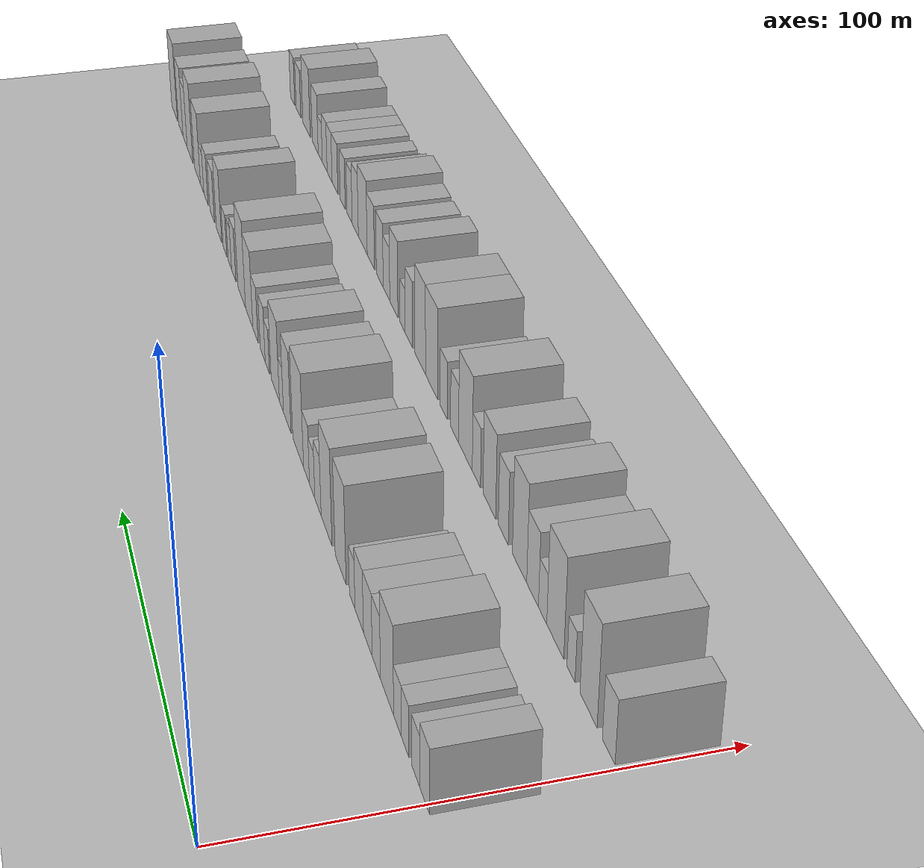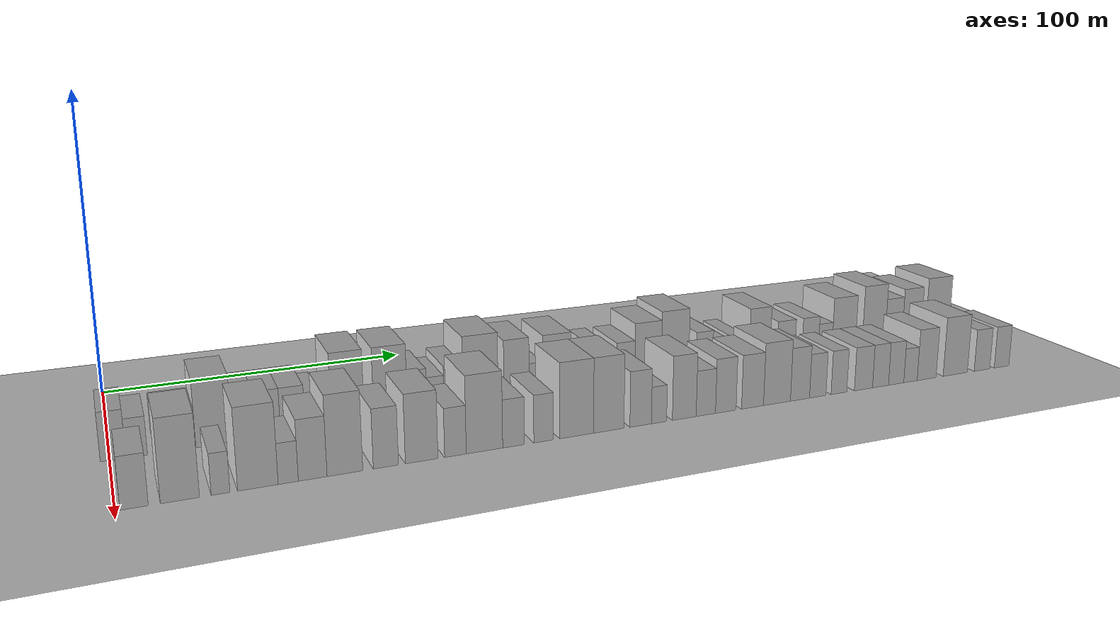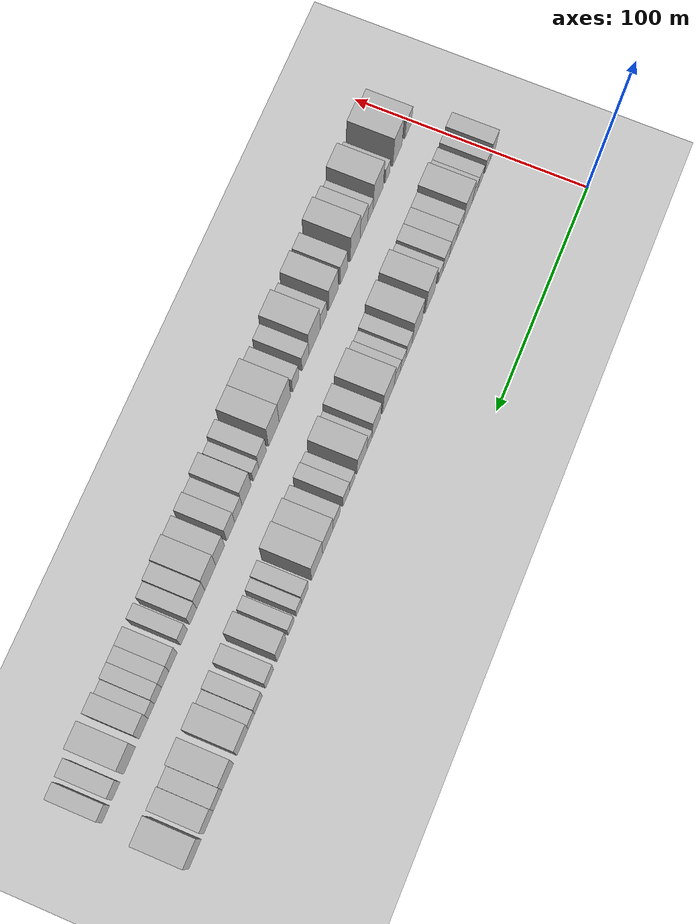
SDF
<sdf version="1.6">
 <world name="default">
  <include>
   <name>ground_plane_2</name>
   <uri>model://HANNAS_ground_plane</uri>
   <pose>100 0 0  0 0 0</pose>
  </include>
  <model name="building_36">
   <static>1</static>
   <pose>50.0000 0.9713 0 0.000000 0.000000 0.000000</pose>
   <link name="link">
    <pose>0 0 7.50 0 0 0</pose>
    <collision name="collision"><geometry><box><size>20.0000 6.8584 15.0000</size></box></geometry></collision>
    <visual name="visual">
     <cast_shadows>0</cast_shadows>
     <geometry><box><size>20.0000 6.8584 15.0000</size></box></geometry>
     <material>
      <script>
       <uri>model://HANNAS_wall/materials/scripts</uri>
       <uri>model://HANNAS_wall/materials/textures</uri>
       <name>vrc/HANNAS_wall</name>
      </script>
     </material>
    </visual>
   </link>
  </model>
  <model name="building_37">
   <static>1</static>
   <pose>50.0000 7.3780 0 0.000000 0.000000 0.000000</pose>
   <link name="link">
    <pose>0 0 6.00 0 0 0</pose>
    <collision name="collision"><geometry><box><size>20.0000 5.9550 12.0000</size></box></geometry></collision>
    <visual name="visual">
     <cast_shadows>0</cast_shadows>
     <geometry><box><size>20.0000 5.9550 12.0000</size></box></geometry>
     <material>
      <script>
       <uri>model://HANNAS_wall/materials/scripts</uri>
       <uri>model://HANNAS_wall/materials/textures</uri>
       <name>vrc/HANNAS_wall</name>
      </script>
     </material>
    </visual>
   </link>
  </model>
  <model name="building_38">
   <static>1</static>
   <pose>50.0000 15.1989 0 0.000000 0.000000 0.000000</pose>
   <link name="link">
    <pose>0 0 6.00 0 0 0</pose>
    <collision name="collision"><geometry><box><size>20.0000 5.6868 12.0000</size></box></geometry></collision>
    <visual name="visual">
     <cast_shadows>0</cast_shadows>
     <geometry><box><size>20.0000 5.6868 12.0000</size></box></geometry>
     <material>
      <script>
       <uri>model://HANNAS_wall/materials/scripts</uri>
       <uri>model://HANNAS_wall/materials/textures</uri>
       <name>vrc/HANNAS_wall</name>
      </script>
     </material>
    </visual>
   </link>
  </model>
  <model name="building_39">
   <static>1</static>
   <pose>50.0000 20.9479 0 0.000000 0.000000 0.000000</pose>
   <link name="link">
    <pose>0 0 6.00 0 0 0</pose>
    <collision name="collision"><geometry><box><size>20.0000 5.8113 12.0000</size></box></geometry></collision>
    <visual name="visual">
     <cast_shadows>0</cast_shadows>
     <geometry><box><size>20.0000 5.8113 12.0000</size></box></geometry>
     <material>
      <script>
       <uri>model://HANNAS_wall/materials/scripts</uri>
       <uri>model://HANNAS_wall/materials/textures</uri>
       <name>vrc/HANNAS_wall</name>
      </script>
     </material>
    </visual>
   </link>
  </model>
  <model name="building_40">
   <static>1</static>
   <pose>50.0000 29.0621 0 0.000000 0.000000 0.000000</pose>
   <link name="link">
    <pose>0 0 10.50 0 0 0</pose>
    <collision name="collision"><geometry><box><size>20.0000 10.4169 21.0000</size></box></geometry></collision>
    <visual name="visual">
     <cast_shadows>0</cast_shadows>
     <geometry><box><size>20.0000 10.4169 21.0000</size></box></geometry>
     <material>
      <script>
       <uri>model://HANNAS_wall/materials/scripts</uri>
       <uri>model://HANNAS_wall/materials/textures</uri>
       <name>vrc/HANNAS_wall</name>
      </script>
     </material>
    </visual>
   </link>
  </model>
  <model name="building_41">
   <static>1</static>
   <pose>50.0000 37.6829 0 0.000000 0.000000 0.000000</pose>
   <link name="link">
    <pose>0 0 7.50 0 0 0</pose>
    <collision name="collision"><geometry><box><size>20.0000 6.8248 15.0000</size></box></geometry></collision>
    <visual name="visual">
     <cast_shadows>0</cast_shadows>
     <geometry><box><size>20.0000 6.8248 15.0000</size></box></geometry>
     <material>
      <script>
       <uri>model://HANNAS_wall/materials/scripts</uri>
       <uri>model://HANNAS_wall/materials/textures</uri>
       <name>vrc/HANNAS_wall</name>
      </script>
     </material>
    </visual>
   </link>
  </model>
  <model name="building_42">
   <static>1</static>
   <pose>50.0000 44.8010 0 0.000000 0.000000 0.000000</pose>
   <link name="link">
    <pose>0 0 7.50 0 0 0</pose>
    <collision name="collision"><geometry><box><size>20.0000 7.4113 15.0000</size></box></geometry></collision>
    <visual name="visual">
     <cast_shadows>0</cast_shadows>
     <geometry><box><size>20.0000 7.4113 15.0000</size></box></geometry>
     <material>
      <script>
       <uri>model://HANNAS_wall/materials/scripts</uri>
       <uri>model://HANNAS_wall/materials/textures</uri>
       <name>vrc/HANNAS_wall</name>
      </script>
     </material>
    </visual>
   </link>
  </model>
  <model name="building_43">
   <static>1</static>
   <pose>50.0000 52.2035 0 0.000000 0.000000 0.000000</pose>
   <link name="link">
    <pose>0 0 7.50 0 0 0</pose>
    <collision name="collision"><geometry><box><size>20.0000 7.3937 15.0000</size></box></geometry></collision>
    <visual name="visual">
     <cast_shadows>0</cast_shadows>
     <geometry><box><size>20.0000 7.3937 15.0000</size></box></geometry>
     <material>
      <script>
       <uri>model://HANNAS_wall/materials/scripts</uri>
       <uri>model://HANNAS_wall/materials/textures</uri>
       <name>vrc/HANNAS_wall</name>
      </script>
     </material>
    </visual>
   </link>
  </model>
  <model name="building_44">
   <static>1</static>
   <pose>50.0000 58.3986 0 0.000000 0.000000 0.000000</pose>
   <link name="link">
    <pose>0 0 6.00 0 0 0</pose>
    <collision name="collision"><geometry><box><size>20.0000 4.9967 12.0000</size></box></geometry></collision>
    <visual name="visual">
     <cast_shadows>0</cast_shadows>
     <geometry><box><size>20.0000 4.9967 12.0000</size></box></geometry>
     <material>
      <script>
       <uri>model://HANNAS_wall/materials/scripts</uri>
       <uri>model://HANNAS_wall/materials/textures</uri>
       <name>vrc/HANNAS_wall</name>
      </script>
     </material>
    </visual>
   </link>
  </model>
  <model name="building_45">
   <static>1</static>
   <pose>50.0000 69.0226 0 0.000000 0.000000 0.000000</pose>
   <link name="link">
    <pose>0 0 12.00 0 0 0</pose>
    <collision name="collision"><geometry><box><size>20.0000 10.2512 24.0000</size></box></geometry></collision>
    <visual name="visual">
     <cast_shadows>0</cast_shadows>
     <geometry><box><size>20.0000 10.2512 24.0000</size></box></geometry>
     <material>
      <script>
       <uri>model://HANNAS_wall/materials/scripts</uri>
       <uri>model://HANNAS_wall/materials/textures</uri>
       <name>vrc/HANNAS_wall</name>
      </script>
     </material>
    </visual>
   </link>
  </model>
  <model name="building_46">
   <static>1</static>
   <pose>50.0000 82.5112 0 0.000000 0.000000 0.000000</pose>
   <link name="link">
    <pose>0 0 12.00 0 0 0</pose>
    <collision name="collision"><geometry><box><size>20.0000 10.7260 24.0000</size></box></geometry></collision>
    <visual name="visual">
     <cast_shadows>0</cast_shadows>
     <geometry><box><size>20.0000 10.7260 24.0000</size></box></geometry>
     <material>
      <script>
       <uri>model://HANNAS_wall/materials/scripts</uri>
       <uri>model://HANNAS_wall/materials/textures</uri>
       <name>vrc/HANNAS_wall</name>
      </script>
     </material>
    </visual>
   </link>
  </model>
  <model name="building_47">
   <static>1</static>
   <pose>50.0000 91.0596 0 0.000000 0.000000 0.000000</pose>
   <link name="link">
    <pose>0 0 7.50 0 0 0</pose>
    <collision name="collision"><geometry><box><size>20.0000 6.3709 15.0000</size></box></geometry></collision>
    <visual name="visual">
     <cast_shadows>0</cast_shadows>
     <geometry><box><size>20.0000 6.3709 15.0000</size></box></geometry>
     <material>
      <script>
       <uri>model://HANNAS_wall/materials/scripts</uri>
       <uri>model://HANNAS_wall/materials/textures</uri>
       <name>vrc/HANNAS_wall</name>
      </script>
     </material>
    </visual>
   </link>
  </model>
  <model name="building_48">
   <static>1</static>
   <pose>50.0000 97.0507 0 0.000000 0.000000 0.000000</pose>
   <link name="link">
    <pose>0 0 6.00 0 0 0</pose>
    <collision name="collision"><geometry><box><size>20.0000 5.6112 12.0000</size></box></geometry></collision>
    <visual name="visual">
     <cast_shadows>0</cast_shadows>
     <geometry><box><size>20.0000 5.6112 12.0000</size></box></geometry>
     <material>
      <script>
       <uri>model://HANNAS_wall/materials/scripts</uri>
       <uri>model://HANNAS_wall/materials/textures</uri>
       <name>vrc/HANNAS_wall</name>
      </script>
     </material>
    </visual>
   </link>
  </model>
  <model name="building_49">
   <static>1</static>
   <pose>50.0000 103.0022 0 0.000000 0.000000 0.000000</pose>
   <link name="link">
    <pose>0 0 7.50 0 0 0</pose>
    <collision name="collision"><geometry><box><size>20.0000 6.2918 15.0000</size></box></geometry></collision>
    <visual name="visual">
     <cast_shadows>0</cast_shadows>
     <geometry><box><size>20.0000 6.2918 15.0000</size></box></geometry>
     <material>
      <script>
       <uri>model://HANNAS_wall/materials/scripts</uri>
       <uri>model://HANNAS_wall/materials/textures</uri>
       <name>vrc/HANNAS_wall</name>
      </script>
     </material>
    </visual>
   </link>
  </model>
  <model name="building_50">
   <static>1</static>
   <pose>50.0000 112.0945 0 0.000000 0.000000 0.000000</pose>
   <link name="link">
    <pose>0 0 12.00 0 0 0</pose>
    <collision name="collision"><geometry><box><size>20.0000 11.8927 24.0000</size></box></geometry></collision>
    <visual name="visual">
     <cast_shadows>0</cast_shadows>
     <geometry><box><size>20.0000 11.8927 24.0000</size></box></geometry>
     <material>
      <script>
       <uri>model://HANNAS_wall/materials/scripts</uri>
       <uri>model://HANNAS_wall/materials/textures</uri>
       <name>vrc/HANNAS_wall</name>
      </script>
     </material>
    </visual>
   </link>
  </model>
  <model name="building_51">
   <static>1</static>
   <pose>50.0000 124.4089 0 0.000000 0.000000 0.000000</pose>
   <link name="link">
    <pose>0 0 10.50 0 0 0</pose>
    <collision name="collision"><geometry><box><size>20.0000 8.7361 21.0000</size></box></geometry></collision>
    <visual name="visual">
     <cast_shadows>0</cast_shadows>
     <geometry><box><size>20.0000 8.7361 21.0000</size></box></geometry>
     <material>
      <script>
       <uri>model://HANNAS_wall/materials/scripts</uri>
       <uri>model://HANNAS_wall/materials/textures</uri>
       <name>vrc/HANNAS_wall</name>
      </script>
     </material>
    </visual>
   </link>
  </model>
  <model name="building_52">
   <static>1</static>
   <pose>50.0000 131.1830 0 0.000000 0.000000 0.000000</pose>
   <link name="link">
    <pose>0 0 6.00 0 0 0</pose>
    <collision name="collision"><geometry><box><size>20.0000 4.8120 12.0000</size></box></geometry></collision>
    <visual name="visual">
     <cast_shadows>0</cast_shadows>
     <geometry><box><size>20.0000 4.8120 12.0000</size></box></geometry>
     <material>
      <script>
       <uri>model://HANNAS_wall/materials/scripts</uri>
       <uri>model://HANNAS_wall/materials/textures</uri>
       <name>vrc/HANNAS_wall</name>
      </script>
     </material>
    </visual>
   </link>
  </model>
  <model name="building_53">
   <static>1</static>
   <pose>50.0000 138.6025 0 0.000000 0.000000 0.000000</pose>
   <link name="link">
    <pose>0 0 10.50 0 0 0</pose>
    <collision name="collision"><geometry><box><size>20.0000 10.0271 21.0000</size></box></geometry></collision>
    <visual name="visual">
     <cast_shadows>0</cast_shadows>
     <geometry><box><size>20.0000 10.0271 21.0000</size></box></geometry>
     <material>
      <script>
       <uri>model://HANNAS_wall/materials/scripts</uri>
       <uri>model://HANNAS_wall/materials/textures</uri>
       <name>vrc/HANNAS_wall</name>
      </script>
     </material>
    </visual>
   </link>
  </model>
  <model name="building_54">
   <static>1</static>
   <pose>50.0000 148.3001 0 0.000000 0.000000 0.000000</pose>
   <link name="link">
    <pose>0 0 6.00 0 0 0</pose>
    <collision name="collision"><geometry><box><size>20.0000 5.3681 12.0000</size></box></geometry></collision>
    <visual name="visual">
     <cast_shadows>0</cast_shadows>
     <geometry><box><size>20.0000 5.3681 12.0000</size></box></geometry>
     <material>
      <script>
       <uri>model://HANNAS_wall/materials/scripts</uri>
       <uri>model://HANNAS_wall/materials/textures</uri>
       <name>vrc/HANNAS_wall</name>
      </script>
     </material>
    </visual>
   </link>
  </model>
  <model name="building_55">
   <static>1</static>
   <pose>50.0000 154.1167 0 0.000000 0.000000 0.000000</pose>
   <link name="link">
    <pose>0 0 7.50 0 0 0</pose>
    <collision name="collision"><geometry><box><size>20.0000 6.2652 15.0000</size></box></geometry></collision>
    <visual name="visual">
     <cast_shadows>0</cast_shadows>
     <geometry><box><size>20.0000 6.2652 15.0000</size></box></geometry>
     <material>
      <script>
       <uri>model://HANNAS_wall/materials/scripts</uri>
       <uri>model://HANNAS_wall/materials/textures</uri>
       <name>vrc/HANNAS_wall</name>
      </script>
     </material>
    </visual>
   </link>
  </model>
  <model name="building_56">
   <static>1</static>
   <pose>50.0000 163.6629 0 0.000000 0.000000 0.000000</pose>
   <link name="link">
    <pose>0 0 7.50 0 0 0</pose>
    <collision name="collision"><geometry><box><size>20.0000 6.8271 15.0000</size></box></geometry></collision>
    <visual name="visual">
     <cast_shadows>0</cast_shadows>
     <geometry><box><size>20.0000 6.8271 15.0000</size></box></geometry>
     <material>
      <script>
       <uri>model://HANNAS_wall/materials/scripts</uri>
       <uri>model://HANNAS_wall/materials/textures</uri>
       <name>vrc/HANNAS_wall</name>
      </script>
     </material>
    </visual>
   </link>
  </model>
  <model name="building_57">
   <static>1</static>
   <pose>50.0000 172.0654 0 0.000000 0.000000 0.000000</pose>
   <link name="link">
    <pose>0 0 10.50 0 0 0</pose>
    <collision name="collision"><geometry><box><size>20.0000 9.9779 21.0000</size></box></geometry></collision>
    <visual name="visual">
     <cast_shadows>0</cast_shadows>
     <geometry><box><size>20.0000 9.9779 21.0000</size></box></geometry>
     <material>
      <script>
       <uri>model://HANNAS_wall/materials/scripts</uri>
       <uri>model://HANNAS_wall/materials/textures</uri>
       <name>vrc/HANNAS_wall</name>
      </script>
     </material>
    </visual>
   </link>
  </model>
  <model name="building_58">
   <static>1</static>
   <pose>50.0000 182.3425 0 0.000000 0.000000 0.000000</pose>
   <link name="link">
    <pose>0 0 12.00 0 0 0</pose>
    <collision name="collision"><geometry><box><size>20.0000 10.5763 24.0000</size></box></geometry></collision>
    <visual name="visual">
     <cast_shadows>0</cast_shadows>
     <geometry><box><size>20.0000 10.5763 24.0000</size></box></geometry>
     <material>
      <script>
       <uri>model://HANNAS_wall/materials/scripts</uri>
       <uri>model://HANNAS_wall/materials/textures</uri>
       <name>vrc/HANNAS_wall</name>
      </script>
     </material>
    </visual>
   </link>
  </model>
  <model name="building_59">
   <static>1</static>
   <pose>50.0000 193.8544 0 0.000000 0.000000 0.000000</pose>
   <link name="link">
    <pose>0 0 7.50 0 0 0</pose>
    <collision name="collision"><geometry><box><size>20.0000 6.4476 15.0000</size></box></geometry></collision>
    <visual name="visual">
     <cast_shadows>0</cast_shadows>
     <geometry><box><size>20.0000 6.4476 15.0000</size></box></geometry>
     <material>
      <script>
       <uri>model://HANNAS_wall/materials/scripts</uri>
       <uri>model://HANNAS_wall/materials/textures</uri>
       <name>vrc/HANNAS_wall</name>
      </script>
     </material>
    </visual>
   </link>
  </model>
  <model name="building_60">
   <static>1</static>
   <pose>50.0000 199.5655 0 0.000000 0.000000 0.000000</pose>
   <link name="link">
    <pose>0 0 6.00 0 0 0</pose>
    <collision name="collision"><geometry><box><size>20.0000 4.9745 12.0000</size></box></geometry></collision>
    <visual name="visual">
     <cast_shadows>0</cast_shadows>
     <geometry><box><size>20.0000 4.9745 12.0000</size></box></geometry>
     <material>
      <script>
       <uri>model://HANNAS_wall/materials/scripts</uri>
       <uri>model://HANNAS_wall/materials/textures</uri>
       <name>vrc/HANNAS_wall</name>
      </script>
     </material>
    </visual>
   </link>
  </model>
  <model name="building_61">
   <static>1</static>
   <pose>50.0000 206.8919 0 0.000000 0.000000 0.000000</pose>
   <link name="link">
    <pose>0 0 6.00 0 0 0</pose>
    <collision name="collision"><geometry><box><size>20.0000 5.6785 12.0000</size></box></geometry></collision>
    <visual name="visual">
     <cast_shadows>0</cast_shadows>
     <geometry><box><size>20.0000 5.6785 12.0000</size></box></geometry>
     <material>
      <script>
       <uri>model://HANNAS_wall/materials/scripts</uri>
       <uri>model://HANNAS_wall/materials/textures</uri>
       <name>vrc/HANNAS_wall</name>
      </script>
     </material>
    </visual>
   </link>
  </model>
  <model name="building_62">
   <static>1</static>
   <pose>50.0000 216.0139 0 0.000000 0.000000 0.000000</pose>
   <link name="link">
    <pose>0 0 10.50 0 0 0</pose>
    <collision name="collision"><geometry><box><size>20.0000 8.5654 21.0000</size></box></geometry></collision>
    <visual name="visual">
     <cast_shadows>0</cast_shadows>
     <geometry><box><size>20.0000 8.5654 21.0000</size></box></geometry>
     <material>
      <script>
       <uri>model://HANNAS_wall/materials/scripts</uri>
       <uri>model://HANNAS_wall/materials/textures</uri>
       <name>vrc/HANNAS_wall</name>
      </script>
     </material>
    </visual>
   </link>
  </model>
  <model name="building_63">
   <static>1</static>
   <pose>50.0000 227.0178 0 0.000000 0.000000 0.000000</pose>
   <link name="link">
    <pose>0 0 7.50 0 0 0</pose>
    <collision name="collision"><geometry><box><size>20.0000 7.4425 15.0000</size></box></geometry></collision>
    <visual name="visual">
     <cast_shadows>0</cast_shadows>
     <geometry><box><size>20.0000 7.4425 15.0000</size></box></geometry>
     <material>
      <script>
       <uri>model://HANNAS_wall/materials/scripts</uri>
       <uri>model://HANNAS_wall/materials/textures</uri>
       <name>vrc/HANNAS_wall</name>
      </script>
     </material>
    </visual>
   </link>
  </model>
  <model name="building_64">
   <static>1</static>
   <pose>50.0000 237.2295 0 0.000000 0.000000 0.000000</pose>
   <link name="link">
    <pose>0 0 7.50 0 0 0</pose>
    <collision name="collision"><geometry><box><size>20.0000 6.9808 15.0000</size></box></geometry></collision>
    <visual name="visual">
     <cast_shadows>0</cast_shadows>
     <geometry><box><size>20.0000 6.9808 15.0000</size></box></geometry>
     <material>
      <script>
       <uri>model://HANNAS_wall/materials/scripts</uri>
       <uri>model://HANNAS_wall/materials/textures</uri>
       <name>vrc/HANNAS_wall</name>
      </script>
     </material>
    </visual>
   </link>
  </model>
  <model name="building_65">
   <static>1</static>
   <pose>50.0000 243.6464 0 0.000000 0.000000 0.000000</pose>
   <link name="link">
    <pose>0 0 6.00 0 0 0</pose>
    <collision name="collision"><geometry><box><size>20.0000 5.8530 12.0000</size></box></geometry></collision>
    <visual name="visual">
     <cast_shadows>0</cast_shadows>
     <geometry><box><size>20.0000 5.8530 12.0000</size></box></geometry>
     <material>
      <script>
       <uri>model://HANNAS_wall/materials/scripts</uri>
       <uri>model://HANNAS_wall/materials/textures</uri>
       <name>vrc/HANNAS_wall</name>
      </script>
     </material>
    </visual>
   </link>
  </model>
  <model name="building_66">
   <static>1</static>
   <pose>50.0000 251.6881 0 0.000000 0.000000 0.000000</pose>
   <link name="link">
    <pose>0 0 10.50 0 0 0</pose>
    <collision name="collision"><geometry><box><size>20.0000 10.2304 21.0000</size></box></geometry></collision>
    <visual name="visual">
     <cast_shadows>0</cast_shadows>
     <geometry><box><size>20.0000 10.2304 21.0000</size></box></geometry>
     <material>
      <script>
       <uri>model://HANNAS_wall/materials/scripts</uri>
       <uri>model://HANNAS_wall/materials/textures</uri>
       <name>vrc/HANNAS_wall</name>
      </script>
     </material>
    </visual>
   </link>
  </model>
  <model name="building_67">
   <static>1</static>
   <pose>50.0000 264.8995 0 0.000000 0.000000 0.000000</pose>
   <link name="link">
    <pose>0 0 12.00 0 0 0</pose>
    <collision name="collision"><geometry><box><size>20.0000 10.1923 24.0000</size></box></geometry></collision>
    <visual name="visual">
     <cast_shadows>0</cast_shadows>
     <geometry><box><size>20.0000 10.1923 24.0000</size></box></geometry>
     <material>
      <script>
       <uri>model://HANNAS_wall/materials/scripts</uri>
       <uri>model://HANNAS_wall/materials/textures</uri>
       <name>vrc/HANNAS_wall</name>
      </script>
     </material>
    </visual>
   </link>
  </model>
  <model name="building_68">
   <static>1</static>
   <pose>50.0000 273.8590 0 0.000000 0.000000 0.000000</pose>
   <link name="link">
    <pose>0 0 9.00 0 0 0</pose>
    <collision name="collision"><geometry><box><size>20.0000 7.7267 18.0000</size></box></geometry></collision>
    <visual name="visual">
     <cast_shadows>0</cast_shadows>
     <geometry><box><size>20.0000 7.7267 18.0000</size></box></geometry>
     <material>
      <script>
       <uri>model://HANNAS_wall/materials/scripts</uri>
       <uri>model://HANNAS_wall/materials/textures</uri>
       <name>vrc/HANNAS_wall</name>
      </script>
     </material>
    </visual>
   </link>
  </model>
  <model name="building_69">
   <static>1</static>
   <pose>50.0000 282.0659 0 0.000000 0.000000 0.000000</pose>
   <link name="link">
    <pose>0 0 10.50 0 0 0</pose>
    <collision name="collision"><geometry><box><size>20.0000 8.6871 21.0000</size></box></geometry></collision>
    <visual name="visual">
     <cast_shadows>0</cast_shadows>
     <geometry><box><size>20.0000 8.6871 21.0000</size></box></geometry>
     <material>
      <script>
       <uri>model://HANNAS_wall/materials/scripts</uri>
       <uri>model://HANNAS_wall/materials/textures</uri>
       <name>vrc/HANNAS_wall</name>
      </script>
     </material>
    </visual>
   </link>
  </model>
  <model name="building_70">
   <static>1</static>
   <pose>50.0000 293.9323 0 0.000000 0.000000 0.000000</pose>
   <link name="link">
    <pose>0 0 12.00 0 0 0</pose>
    <collision name="collision"><geometry><box><size>20.0000 11.0458 24.0000</size></box></geometry></collision>
    <visual name="visual">
     <cast_shadows>0</cast_shadows>
     <geometry><box><size>20.0000 11.0458 24.0000</size></box></geometry>
     <material>
      <script>
       <uri>model://HANNAS_wall/materials/scripts</uri>
       <uri>model://HANNAS_wall/materials/textures</uri>
       <name>vrc/HANNAS_wall</name>
      </script>
     </material>
    </visual>
   </link>
  </model>
  <model name="building_104">
   <static>1</static>
   <pose>85.0000 4.7900 0 0.000000 0.000000 0.000000</pose>
   <link name="link">
    <pose>0 0 7.50 0 0 0</pose>
    <collision name="collision"><geometry><box><size>20.0000 7.0365 15.0000</size></box></geometry></collision>
    <visual name="visual">
     <cast_shadows>0</cast_shadows>
     <geometry><box><size>20.0000 7.0365 15.0000</size></box></geometry>
     <material>
      <script>
       <uri>model://HANNAS_wall/materials/scripts</uri>
       <uri>model://HANNAS_wall/materials/textures</uri>
       <name>vrc/HANNAS_wall</name>
      </script>
     </material>
    </visual>
   </link>
  </model>
  <model name="building_105">
   <static>1</static>
   <pose>85.0000 16.2963 0 0.000000 0.000000 0.000000</pose>
   <link name="link">
    <pose>0 0 12.00 0 0 0</pose>
    <collision name="collision"><geometry><box><size>20.0000 9.9761 24.0000</size></box></geometry></collision>
    <visual name="visual">
     <cast_shadows>0</cast_shadows>
     <geometry><box><size>20.0000 9.9761 24.0000</size></box></geometry>
     <material>
      <script>
       <uri>model://HANNAS_wall/materials/scripts</uri>
       <uri>model://HANNAS_wall/materials/textures</uri>
       <name>vrc/HANNAS_wall</name>
      </script>
     </material>
    </visual>
   </link>
  </model>
  <model name="building_106">
   <static>1</static>
   <pose>85.0000 26.7375 0 0.000000 0.000000 0.000000</pose>
   <link name="link">
    <pose>0 0 6.00 0 0 0</pose>
    <collision name="collision"><geometry><box><size>20.0000 4.9063 12.0000</size></box></geometry></collision>
    <visual name="visual">
     <cast_shadows>0</cast_shadows>
     <geometry><box><size>20.0000 4.9063 12.0000</size></box></geometry>
     <material>
      <script>
       <uri>model://HANNAS_wall/materials/scripts</uri>
       <uri>model://HANNAS_wall/materials/textures</uri>
       <name>vrc/HANNAS_wall</name>
      </script>
     </material>
    </visual>
   </link>
  </model>
  <model name="building_107">
   <static>1</static>
   <pose>85.0000 36.5981 0 0.000000 0.000000 0.000000</pose>
   <link name="link">
    <pose>0 0 12.00 0 0 0</pose>
    <collision name="collision"><geometry><box><size>20.0000 10.8150 24.0000</size></box></geometry></collision>
    <visual name="visual">
     <cast_shadows>0</cast_shadows>
     <geometry><box><size>20.0000 10.8150 24.0000</size></box></geometry>
     <material>
      <script>
       <uri>model://HANNAS_wall/materials/scripts</uri>
       <uri>model://HANNAS_wall/materials/textures</uri>
       <name>vrc/HANNAS_wall</name>
      </script>
     </material>
    </visual>
   </link>
  </model>
  <model name="building_108">
   <static>1</static>
   <pose>85.0000 44.7416 0 0.000000 0.000000 0.000000</pose>
   <link name="link">
    <pose>0 0 6.00 0 0 0</pose>
    <collision name="collision"><geometry><box><size>20.0000 5.4720 12.0000</size></box></geometry></collision>
    <visual name="visual">
     <cast_shadows>0</cast_shadows>
     <geometry><box><size>20.0000 5.4720 12.0000</size></box></geometry>
     <material>
      <script>
       <uri>model://HANNAS_wall/materials/scripts</uri>
       <uri>model://HANNAS_wall/materials/textures</uri>
       <name>vrc/HANNAS_wall</name>
      </script>
     </material>
    </visual>
   </link>
  </model>
  <model name="building_109">
   <static>1</static>
   <pose>85.0000 51.4442 0 0.000000 0.000000 0.000000</pose>
   <link name="link">
    <pose>0 0 9.00 0 0 0</pose>
    <collision name="collision"><geometry><box><size>20.0000 7.9330 18.0000</size></box></geometry></collision>
    <visual name="visual">
     <cast_shadows>0</cast_shadows>
     <geometry><box><size>20.0000 7.9330 18.0000</size></box></geometry>
     <material>
      <script>
       <uri>model://HANNAS_wall/materials/scripts</uri>
       <uri>model://HANNAS_wall/materials/textures</uri>
       <name>vrc/HANNAS_wall</name>
      </script>
     </material>
    </visual>
   </link>
  </model>
  <model name="building_110">
   <static>1</static>
   <pose>85.0000 60.4365 0 0.000000 0.000000 0.000000</pose>
   <link name="link">
    <pose>0 0 12.00 0 0 0</pose>
    <collision name="collision"><geometry><box><size>20.0000 10.0516 24.0000</size></box></geometry></collision>
    <visual name="visual">
     <cast_shadows>0</cast_shadows>
     <geometry><box><size>20.0000 10.0516 24.0000</size></box></geometry>
     <material>
      <script>
       <uri>model://HANNAS_wall/materials/scripts</uri>
       <uri>model://HANNAS_wall/materials/textures</uri>
       <name>vrc/HANNAS_wall</name>
      </script>
     </material>
    </visual>
   </link>
  </model>
  <model name="building_111">
   <static>1</static>
   <pose>85.0000 72.0995 0 0.000000 0.000000 0.000000</pose>
   <link name="link">
    <pose>0 0 9.00 0 0 0</pose>
    <collision name="collision"><geometry><box><size>20.0000 7.2744 18.0000</size></box></geometry></collision>
    <visual name="visual">
     <cast_shadows>0</cast_shadows>
     <geometry><box><size>20.0000 7.2744 18.0000</size></box></geometry>
     <material>
      <script>
       <uri>model://HANNAS_wall/materials/scripts</uri>
       <uri>model://HANNAS_wall/materials/textures</uri>
       <name>vrc/HANNAS_wall</name>
      </script>
     </material>
    </visual>
   </link>
  </model>
  <model name="building_112">
   <static>1</static>
   <pose>85.0000 82.5572 0 0.000000 0.000000 0.000000</pose>
   <link name="link">
    <pose>0 0 10.50 0 0 0</pose>
    <collision name="collision"><geometry><box><size>20.0000 9.6410 21.0000</size></box></geometry></collision>
    <visual name="visual">
     <cast_shadows>0</cast_shadows>
     <geometry><box><size>20.0000 9.6410 21.0000</size></box></geometry>
     <material>
      <script>
       <uri>model://HANNAS_wall/materials/scripts</uri>
       <uri>model://HANNAS_wall/materials/textures</uri>
       <name>vrc/HANNAS_wall</name>
      </script>
     </material>
    </visual>
   </link>
  </model>
  <model name="building_113">
   <static>1</static>
   <pose>85.0000 92.6479 0 0.000000 0.000000 0.000000</pose>
   <link name="link">
    <pose>0 0 7.50 0 0 0</pose>
    <collision name="collision"><geometry><box><size>20.0000 6.5405 15.0000</size></box></geometry></collision>
    <visual name="visual">
     <cast_shadows>0</cast_shadows>
     <geometry><box><size>20.0000 6.5405 15.0000</size></box></geometry>
     <material>
      <script>
       <uri>model://HANNAS_wall/materials/scripts</uri>
       <uri>model://HANNAS_wall/materials/textures</uri>
       <name>vrc/HANNAS_wall</name>
      </script>
     </material>
    </visual>
   </link>
  </model>
  <model name="building_114">
   <static>1</static>
   <pose>85.0000 101.5313 0 0.000000 0.000000 0.000000</pose>
   <link name="link">
    <pose>0 0 12.00 0 0 0</pose>
    <collision name="collision"><geometry><box><size>20.0000 11.2264 24.0000</size></box></geometry></collision>
    <visual name="visual">
     <cast_shadows>0</cast_shadows>
     <geometry><box><size>20.0000 11.2264 24.0000</size></box></geometry>
     <material>
      <script>
       <uri>model://HANNAS_wall/materials/scripts</uri>
       <uri>model://HANNAS_wall/materials/textures</uri>
       <name>vrc/HANNAS_wall</name>
      </script>
     </material>
    </visual>
   </link>
  </model>
  <model name="building_115">
   <static>1</static>
   <pose>85.0000 110.5446 0 0.000000 0.000000 0.000000</pose>
   <link name="link">
    <pose>0 0 7.50 0 0 0</pose>
    <collision name="collision"><geometry><box><size>20.0000 6.8001 15.0000</size></box></geometry></collision>
    <visual name="visual">
     <cast_shadows>0</cast_shadows>
     <geometry><box><size>20.0000 6.8001 15.0000</size></box></geometry>
     <material>
      <script>
       <uri>model://HANNAS_wall/materials/scripts</uri>
       <uri>model://HANNAS_wall/materials/textures</uri>
       <name>vrc/HANNAS_wall</name>
      </script>
     </material>
    </visual>
   </link>
  </model>
  <model name="building_116">
   <static>1</static>
   <pose>85.0000 120.0820 0 0.000000 0.000000 0.000000</pose>
   <link name="link">
    <pose>0 0 7.50 0 0 0</pose>
    <collision name="collision"><geometry><box><size>20.0000 6.2747 15.0000</size></box></geometry></collision>
    <visual name="visual">
     <cast_shadows>0</cast_shadows>
     <geometry><box><size>20.0000 6.2747 15.0000</size></box></geometry>
     <material>
      <script>
       <uri>model://HANNAS_wall/materials/scripts</uri>
       <uri>model://HANNAS_wall/materials/textures</uri>
       <name>vrc/HANNAS_wall</name>
      </script>
     </material>
    </visual>
   </link>
  </model>
  <model name="building_117">
   <static>1</static>
   <pose>85.0000 130.7941 0 0.000000 0.000000 0.000000</pose>
   <link name="link">
    <pose>0 0 12.00 0 0 0</pose>
    <collision name="collision"><geometry><box><size>20.0000 11.1496 24.0000</size></box></geometry></collision>
    <visual name="visual">
     <cast_shadows>0</cast_shadows>
     <geometry><box><size>20.0000 11.1496 24.0000</size></box></geometry>
     <material>
      <script>
       <uri>model://HANNAS_wall/materials/scripts</uri>
       <uri>model://HANNAS_wall/materials/textures</uri>
       <name>vrc/HANNAS_wall</name>
      </script>
     </material>
    </visual>
   </link>
  </model>
  <model name="building_118">
   <static>1</static>
   <pose>85.0000 141.4559 0 0.000000 0.000000 0.000000</pose>
   <link name="link">
    <pose>0 0 12.00 0 0 0</pose>
    <collision name="collision"><geometry><box><size>20.0000 10.1741 24.0000</size></box></geometry></collision>
    <visual name="visual">
     <cast_shadows>0</cast_shadows>
     <geometry><box><size>20.0000 10.1741 24.0000</size></box></geometry>
     <material>
      <script>
       <uri>model://HANNAS_wall/materials/scripts</uri>
       <uri>model://HANNAS_wall/materials/textures</uri>
       <name>vrc/HANNAS_wall</name>
      </script>
     </material>
    </visual>
   </link>
  </model>
  <model name="building_119">
   <static>1</static>
   <pose>85.0000 152.2241 0 0.000000 0.000000 0.000000</pose>
   <link name="link">
    <pose>0 0 9.00 0 0 0</pose>
    <collision name="collision"><geometry><box><size>20.0000 7.3623 18.0000</size></box></geometry></collision>
    <visual name="visual">
     <cast_shadows>0</cast_shadows>
     <geometry><box><size>20.0000 7.3623 18.0000</size></box></geometry>
     <material>
      <script>
       <uri>model://HANNAS_wall/materials/scripts</uri>
       <uri>model://HANNAS_wall/materials/textures</uri>
       <name>vrc/HANNAS_wall</name>
      </script>
     </material>
    </visual>
   </link>
  </model>
  <model name="building_120">
   <static>1</static>
   <pose>85.0000 158.5432 0 0.000000 0.000000 0.000000</pose>
   <link name="link">
    <pose>0 0 6.00 0 0 0</pose>
    <collision name="collision"><geometry><box><size>20.0000 5.2759 12.0000</size></box></geometry></collision>
    <visual name="visual">
     <cast_shadows>0</cast_shadows>
     <geometry><box><size>20.0000 5.2759 12.0000</size></box></geometry>
     <material>
      <script>
       <uri>model://HANNAS_wall/materials/scripts</uri>
       <uri>model://HANNAS_wall/materials/textures</uri>
       <name>vrc/HANNAS_wall</name>
      </script>
     </material>
    </visual>
   </link>
  </model>
  <model name="building_121">
   <static>1</static>
   <pose>85.0000 167.3902 0 0.000000 0.000000 0.000000</pose>
   <link name="link">
    <pose>0 0 10.50 0 0 0</pose>
    <collision name="collision"><geometry><box><size>20.0000 8.4181 21.0000</size></box></geometry></collision>
    <visual name="visual">
     <cast_shadows>0</cast_shadows>
     <geometry><box><size>20.0000 8.4181 21.0000</size></box></geometry>
     <material>
      <script>
       <uri>model://HANNAS_wall/materials/scripts</uri>
       <uri>model://HANNAS_wall/materials/textures</uri>
       <name>vrc/HANNAS_wall</name>
      </script>
     </material>
    </visual>
   </link>
  </model>
  <model name="building_122">
   <static>1</static>
   <pose>85.0000 175.0679 0 0.000000 0.000000 0.000000</pose>
   <link name="link">
    <pose>0 0 7.50 0 0 0</pose>
    <collision name="collision"><geometry><box><size>20.0000 6.9372 15.0000</size></box></geometry></collision>
    <visual name="visual">
     <cast_shadows>0</cast_shadows>
     <geometry><box><size>20.0000 6.9372 15.0000</size></box></geometry>
     <material>
      <script>
       <uri>model://HANNAS_wall/materials/scripts</uri>
       <uri>model://HANNAS_wall/materials/textures</uri>
       <name>vrc/HANNAS_wall</name>
      </script>
     </material>
    </visual>
   </link>
  </model>
  <model name="building_123">
   <static>1</static>
   <pose>85.0000 182.2742 0 0.000000 0.000000 0.000000</pose>
   <link name="link">
    <pose>0 0 9.00 0 0 0</pose>
    <collision name="collision"><geometry><box><size>20.0000 7.4756 18.0000</size></box></geometry></collision>
    <visual name="visual">
     <cast_shadows>0</cast_shadows>
     <geometry><box><size>20.0000 7.4756 18.0000</size></box></geometry>
     <material>
      <script>
       <uri>model://HANNAS_wall/materials/scripts</uri>
       <uri>model://HANNAS_wall/materials/textures</uri>
       <name>vrc/HANNAS_wall</name>
      </script>
     </material>
    </visual>
   </link>
  </model>
  <model name="building_124">
   <static>1</static>
   <pose>85.0000 192.0941 0 0.000000 0.000000 0.000000</pose>
   <link name="link">
    <pose>0 0 9.00 0 0 0</pose>
    <collision name="collision"><geometry><box><size>20.0000 8.1640 18.0000</size></box></geometry></collision>
    <visual name="visual">
     <cast_shadows>0</cast_shadows>
     <geometry><box><size>20.0000 8.1640 18.0000</size></box></geometry>
     <material>
      <script>
       <uri>model://HANNAS_wall/materials/scripts</uri>
       <uri>model://HANNAS_wall/materials/textures</uri>
       <name>vrc/HANNAS_wall</name>
      </script>
     </material>
    </visual>
   </link>
  </model>
  <model name="building_125">
   <static>1</static>
   <pose>85.0000 201.2618 0 0.000000 0.000000 0.000000</pose>
   <link name="link">
    <pose>0 0 10.50 0 0 0</pose>
    <collision name="collision"><geometry><box><size>20.0000 10.1715 21.0000</size></box></geometry></collision>
    <visual name="visual">
     <cast_shadows>0</cast_shadows>
     <geometry><box><size>20.0000 10.1715 21.0000</size></box></geometry>
     <material>
      <script>
       <uri>model://HANNAS_wall/materials/scripts</uri>
       <uri>model://HANNAS_wall/materials/textures</uri>
       <name>vrc/HANNAS_wall</name>
      </script>
     </material>
    </visual>
   </link>
  </model>
  <model name="building_126">
   <static>1</static>
   <pose>85.0000 210.0127 0 0.000000 0.000000 0.000000</pose>
   <link name="link">
    <pose>0 0 9.00 0 0 0</pose>
    <collision name="collision"><geometry><box><size>20.0000 7.3302 18.0000</size></box></geometry></collision>
    <visual name="visual">
     <cast_shadows>0</cast_shadows>
     <geometry><box><size>20.0000 7.3302 18.0000</size></box></geometry>
     <material>
      <script>
       <uri>model://HANNAS_wall/materials/scripts</uri>
       <uri>model://HANNAS_wall/materials/textures</uri>
       <name>vrc/HANNAS_wall</name>
      </script>
     </material>
    </visual>
   </link>
  </model>
  <model name="building_127">
   <static>1</static>
   <pose>85.0000 216.8686 0 0.000000 0.000000 0.000000</pose>
   <link name="link">
    <pose>0 0 7.50 0 0 0</pose>
    <collision name="collision"><geometry><box><size>20.0000 6.3818 15.0000</size></box></geometry></collision>
    <visual name="visual">
     <cast_shadows>0</cast_shadows>
     <geometry><box><size>20.0000 6.3818 15.0000</size></box></geometry>
     <material>
      <script>
       <uri>model://HANNAS_wall/materials/scripts</uri>
       <uri>model://HANNAS_wall/materials/textures</uri>
       <name>vrc/HANNAS_wall</name>
      </script>
     </material>
    </visual>
   </link>
  </model>
  <model name="building_128">
   <static>1</static>
   <pose>85.0000 225.1795 0 0.000000 0.000000 0.000000</pose>
   <link name="link">
    <pose>0 0 7.50 0 0 0</pose>
    <collision name="collision"><geometry><box><size>20.0000 6.2400 15.0000</size></box></geometry></collision>
    <visual name="visual">
     <cast_shadows>0</cast_shadows>
     <geometry><box><size>20.0000 6.2400 15.0000</size></box></geometry>
     <material>
      <script>
       <uri>model://HANNAS_wall/materials/scripts</uri>
       <uri>model://HANNAS_wall/materials/textures</uri>
       <name>vrc/HANNAS_wall</name>
      </script>
     </material>
    </visual>
   </link>
  </model>
  <model name="building_129">
   <static>1</static>
   <pose>85.0000 234.9573 0 0.000000 0.000000 0.000000</pose>
   <link name="link">
    <pose>0 0 7.50 0 0 0</pose>
    <collision name="collision"><geometry><box><size>20.0000 7.3156 15.0000</size></box></geometry></collision>
    <visual name="visual">
     <cast_shadows>0</cast_shadows>
     <geometry><box><size>20.0000 7.3156 15.0000</size></box></geometry>
     <material>
      <script>
       <uri>model://HANNAS_wall/materials/scripts</uri>
       <uri>model://HANNAS_wall/materials/textures</uri>
       <name>vrc/HANNAS_wall</name>
      </script>
     </material>
    </visual>
   </link>
  </model>
  <model name="building_130">
   <static>1</static>
   <pose>85.0000 241.8642 0 0.000000 0.000000 0.000000</pose>
   <link name="link">
    <pose>0 0 7.50 0 0 0</pose>
    <collision name="collision"><geometry><box><size>20.0000 6.4982 15.0000</size></box></geometry></collision>
    <visual name="visual">
     <cast_shadows>0</cast_shadows>
     <geometry><box><size>20.0000 6.4982 15.0000</size></box></geometry>
     <material>
      <script>
       <uri>model://HANNAS_wall/materials/scripts</uri>
       <uri>model://HANNAS_wall/materials/textures</uri>
       <name>vrc/HANNAS_wall</name>
      </script>
     </material>
    </visual>
   </link>
  </model>
  <model name="building_131">
   <static>1</static>
   <pose>85.0000 248.2804 0 0.000000 0.000000 0.000000</pose>
   <link name="link">
    <pose>0 0 7.50 0 0 0</pose>
    <collision name="collision"><geometry><box><size>20.0000 6.3341 15.0000</size></box></geometry></collision>
    <visual name="visual">
     <cast_shadows>0</cast_shadows>
     <geometry><box><size>20.0000 6.3341 15.0000</size></box></geometry>
     <material>
      <script>
       <uri>model://HANNAS_wall/materials/scripts</uri>
       <uri>model://HANNAS_wall/materials/textures</uri>
       <name>vrc/HANNAS_wall</name>
      </script>
     </material>
    </visual>
   </link>
  </model>
  <model name="building_132">
   <static>1</static>
   <pose>85.0000 254.2386 0 0.000000 0.000000 0.000000</pose>
   <link name="link">
    <pose>0 0 6.00 0 0 0</pose>
    <collision name="collision"><geometry><box><size>20.0000 5.5822 12.0000</size></box></geometry></collision>
    <visual name="visual">
     <cast_shadows>0</cast_shadows>
     <geometry><box><size>20.0000 5.5822 12.0000</size></box></geometry>
     <material>
      <script>
       <uri>model://HANNAS_wall/materials/scripts</uri>
       <uri>model://HANNAS_wall/materials/textures</uri>
       <name>vrc/HANNAS_wall</name>
      </script>
     </material>
    </visual>
   </link>
  </model>
  <model name="building_133">
   <static>1</static>
   <pose>85.0000 261.0271 0 0.000000 0.000000 0.000000</pose>
   <link name="link">
    <pose>0 0 9.00 0 0 0</pose>
    <collision name="collision"><geometry><box><size>20.0000 7.9948 18.0000</size></box></geometry></collision>
    <visual name="visual">
     <cast_shadows>0</cast_shadows>
     <geometry><box><size>20.0000 7.9948 18.0000</size></box></geometry>
     <material>
      <script>
       <uri>model://HANNAS_wall/materials/scripts</uri>
       <uri>model://HANNAS_wall/materials/textures</uri>
       <name>vrc/HANNAS_wall</name>
      </script>
     </material>
    </visual>
   </link>
  </model>
  <model name="building_134">
   <static>1</static>
   <pose>85.0000 273.2595 0 0.000000 0.000000 0.000000</pose>
   <link name="link">
    <pose>0 0 10.50 0 0 0</pose>
    <collision name="collision"><geometry><box><size>20.0000 10.4701 21.0000</size></box></geometry></collision>
    <visual name="visual">
     <cast_shadows>0</cast_shadows>
     <geometry><box><size>20.0000 10.4701 21.0000</size></box></geometry>
     <material>
      <script>
       <uri>model://HANNAS_wall/materials/scripts</uri>
       <uri>model://HANNAS_wall/materials/textures</uri>
       <name>vrc/HANNAS_wall</name>
      </script>
     </material>
    </visual>
   </link>
  </model>
  <model name="building_135">
   <static>1</static>
   <pose>85.0000 284.9357 0 0.000000 0.000000 0.000000</pose>
   <link name="link">
    <pose>0 0 7.50 0 0 0</pose>
    <collision name="collision"><geometry><box><size>20.0000 6.8823 15.0000</size></box></geometry></collision>
    <visual name="visual">
     <cast_shadows>0</cast_shadows>
     <geometry><box><size>20.0000 6.8823 15.0000</size></box></geometry>
     <material>
      <script>
       <uri>model://HANNAS_wall/materials/scripts</uri>
       <uri>model://HANNAS_wall/materials/textures</uri>
       <name>vrc/HANNAS_wall</name>
      </script>
     </material>
    </visual>
   </link>
  </model>
  <model name="building_136">
   <static>1</static>
   <pose>85.0000 293.6374 0 0.000000 0.000000 0.000000</pose>
   <link name="link">
    <pose>0 0 7.50 0 0 0</pose>
    <collision name="collision"><geometry><box><size>20.0000 6.5212 15.0000</size></box></geometry></collision>
    <visual name="visual">
     <cast_shadows>0</cast_shadows>
     <geometry><box><size>20.0000 6.5212 15.0000</size></box></geometry>
     <material>
      <script>
       <uri>model://HANNAS_wall/materials/scripts</uri>
       <uri>model://HANNAS_wall/materials/textures</uri>
       <name>vrc/HANNAS_wall</name>
      </script>
     </material>
    </visual>
   </link>
  </model>
 </world>
</sdf>
